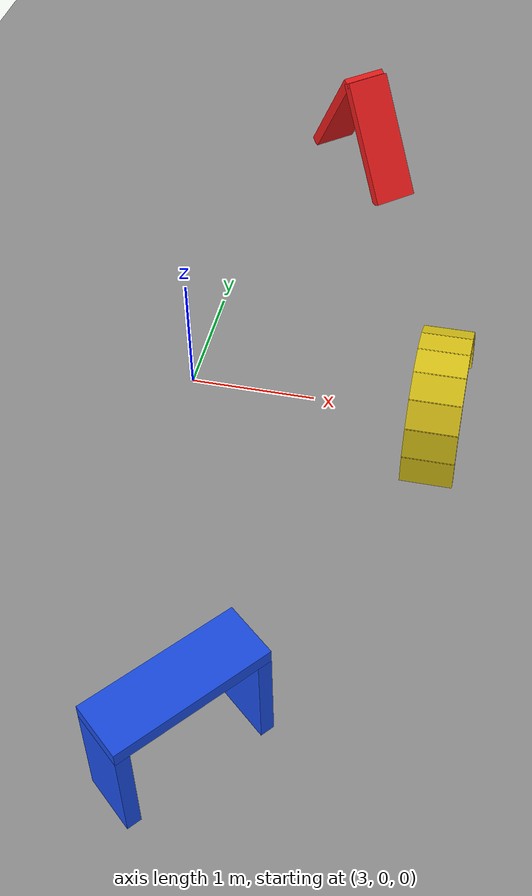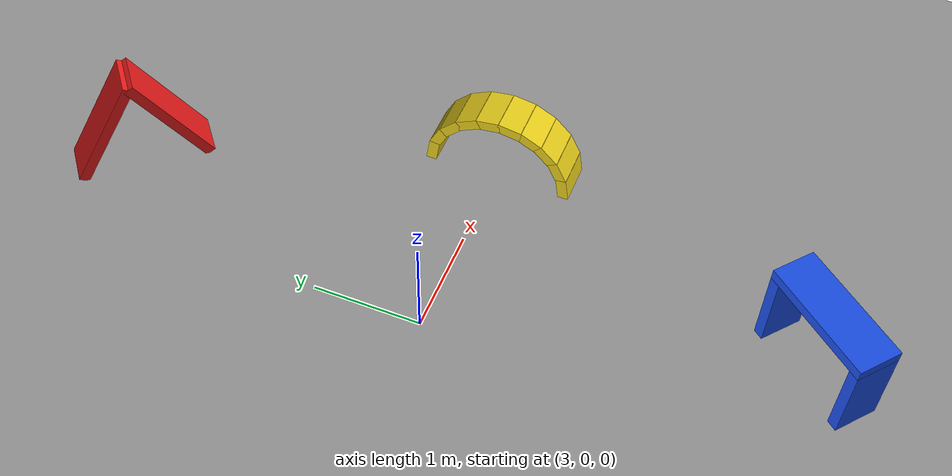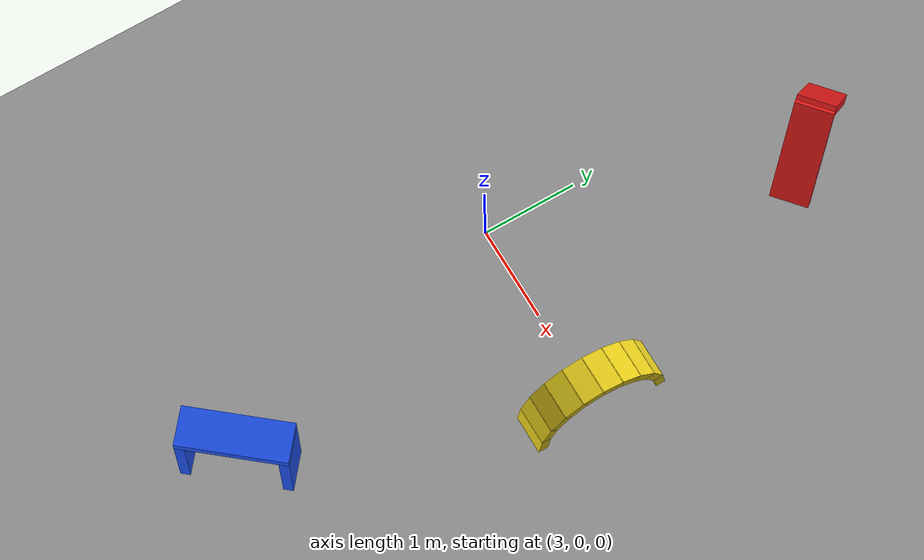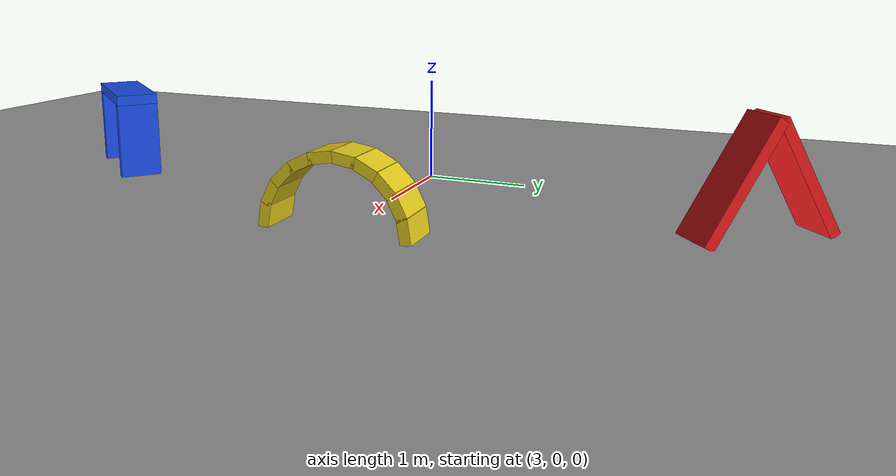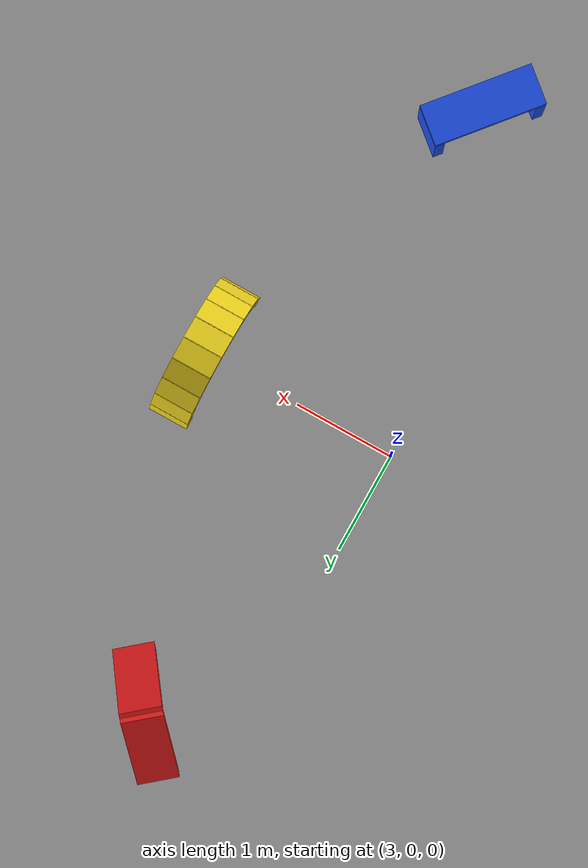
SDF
<?xml version="1.0"?>
<sdf version="1.6">
  <world name="tunnel_arc">

    <!-- ==================== Physics ==================== -->
    <physics type="ode">
      <real_time_update_rate>1000.0</real_time_update_rate>
      <max_step_size>0.001</max_step_size>
      <real_time_factor>1</real_time_factor>
    </physics>

    <!-- ==================== Scene ==================== -->
    <scene>
      <ambient>0.6 0.6 0.6 1</ambient>
      <background>0.4 0.5 0.6 1</background>
      <shadows>false</shadows>
    </scene>

    <!-- ==================== Lighting ==================== -->
    <light name="sun" type="directional">
      <cast_shadows>true</cast_shadows>
      <pose>0 0 10 0 0 0</pose>
      <diffuse>0.9 0.9 0.9 1</diffuse>
      <specular>0.3 0.3 0.3 1</specular>
      <direction>-0.3 0.3 -1</direction>
    </light>

    <!-- ==================== Gazebo ROS State Plugin ==================== -->
    <plugin name="gazebo_ros_state" filename="libgazebo_ros_state.so">
      <ros>
        <namespace>/</namespace>
      </ros>
    </plugin>

    <!-- ==================== Ground Plane ==================== -->
    <model name="ground_plane">
      <static>true</static>
      <link name="link">
        <collision name="collision">
          <geometry>
            <plane><normal>0 0 1</normal><size>100 100</size></plane>
          </geometry>
          <surface>
            <friction><ode><mu>100</mu><mu2>50</mu2></ode></friction>
          </surface>
        </collision>
        <visual name="visual">
          <cast_shadows>false</cast_shadows>
          <geometry>
            <plane><normal>0 0 1</normal><size>20 20</size></plane>
          </geometry>
          <material>
            <ambient>0.58 0.58 0.58 1</ambient>
            <diffuse>0.58 0.58 0.58 1</diffuse>
            <specular>0 0 0 1</specular>
          </material>
        </visual>
      </link>
    </model>

    <!-- ===== 三角形(Triangle) 隧道  θ=+40° ===== -->
    <model name="tunnel_triangle">
      <static>true</static>
      <!--
        ARC_RADIUS=5.0 m, θ=+40°
        位置 x=3.83  y=3.21  yaw=-2.4440 rad
        （+X 面朝向机器人，机器人沿本地 -X 方向穿越）
      -->
      <pose>3.83 3.21 0 0 0 -2.4440</pose>
      <link name="left_panel">
        <pose>0.0000 -0.3000 0.5000 1.0304 0.0000 0.0000</pose>
        <collision name="col">
          <geometry><box><size>0.4000 1.1662 0.1000</size></box></geometry>
        </collision>
        <visual name="vis">
          <geometry><box><size>0.4000 1.1662 0.1000</size></box></geometry>
          <material>
            <ambient>0.9 0.1 0.1 1</ambient>
            <diffuse>0.9 0.1 0.1 1</diffuse>
            <specular>0.4 0.4 0.4 30</specular>
          </material>
        </visual>
      </link>
      <link name="right_panel">
        <pose>0.0000 0.3000 0.5000 2.1112 0.0000 0.0000</pose>
        <collision name="col">
          <geometry><box><size>0.4000 1.1662 0.1000</size></box></geometry>
        </collision>
        <visual name="vis">
          <geometry><box><size>0.4000 1.1662 0.1000</size></box></geometry>
          <material>
            <ambient>0.9 0.1 0.1 1</ambient>
            <diffuse>0.9 0.1 0.1 1</diffuse>
            <specular>0.4 0.4 0.4 30</specular>
          </material>
        </visual>
      </link>
    </model>

    <!-- ===== 半圆形(Semicircle) 隧道  θ=  0° ===== -->
    <model name="tunnel_semicircle">
      <static>true</static>
      <!--
        ARC_RADIUS=5.0 m, θ=  0°
        位置 x=5.00  y=0.00  yaw=-3.1416 rad
        （+X 面朝向机器人，机器人沿本地 -X 方向穿越）
      -->
      <pose>5.00 0.00 0 0 0 -3.1416</pose>
      <link name="arc_00">
        <pose>0.0000 0.6420 0.1017 1.7279 0.0000 0.0000</pose>
        <collision name="col">
          <geometry><box><size>0.4000 0.2278 0.1000</size></box></geometry>
        </collision>
        <visual name="vis">
          <geometry><box><size>0.4000 0.2278 0.1000</size></box></geometry>
          <material>
            <ambient>0.9 0.8 0.1 1</ambient>
            <diffuse>0.9 0.8 0.1 1</diffuse>
            <specular>0.4 0.4 0.4 30</specular>
          </material>
        </visual>
      </link>
      <link name="arc_01">
        <pose>0.0000 0.5792 0.2951 2.0420 0.0000 0.0000</pose>
        <collision name="col">
          <geometry><box><size>0.4000 0.2278 0.1000</size></box></geometry>
        </collision>
        <visual name="vis">
          <geometry><box><size>0.4000 0.2278 0.1000</size></box></geometry>
          <material>
            <ambient>0.9 0.8 0.1 1</ambient>
            <diffuse>0.9 0.8 0.1 1</diffuse>
            <specular>0.4 0.4 0.4 30</specular>
          </material>
        </visual>
      </link>
      <link name="arc_02">
        <pose>0.0000 0.4596 0.4596 2.3562 0.0000 0.0000</pose>
        <collision name="col">
          <geometry><box><size>0.4000 0.2278 0.1000</size></box></geometry>
        </collision>
        <visual name="vis">
          <geometry><box><size>0.4000 0.2278 0.1000</size></box></geometry>
          <material>
            <ambient>0.9 0.8 0.1 1</ambient>
            <diffuse>0.9 0.8 0.1 1</diffuse>
            <specular>0.4 0.4 0.4 30</specular>
          </material>
        </visual>
      </link>
      <link name="arc_03">
        <pose>0.0000 0.2951 0.5792 2.6704 0.0000 0.0000</pose>
        <collision name="col">
          <geometry><box><size>0.4000 0.2278 0.1000</size></box></geometry>
        </collision>
        <visual name="vis">
          <geometry><box><size>0.4000 0.2278 0.1000</size></box></geometry>
          <material>
            <ambient>0.9 0.8 0.1 1</ambient>
            <diffuse>0.9 0.8 0.1 1</diffuse>
            <specular>0.4 0.4 0.4 30</specular>
          </material>
        </visual>
      </link>
      <link name="arc_04">
        <pose>0.0000 0.1017 0.6420 2.9845 0.0000 0.0000</pose>
        <collision name="col">
          <geometry><box><size>0.4000 0.2278 0.1000</size></box></geometry>
        </collision>
        <visual name="vis">
          <geometry><box><size>0.4000 0.2278 0.1000</size></box></geometry>
          <material>
            <ambient>0.9 0.8 0.1 1</ambient>
            <diffuse>0.9 0.8 0.1 1</diffuse>
            <specular>0.4 0.4 0.4 30</specular>
          </material>
        </visual>
      </link>
      <link name="arc_05">
        <pose>0.0000 -0.1017 0.6420 -2.9845 0.0000 0.0000</pose>
        <collision name="col">
          <geometry><box><size>0.4000 0.2278 0.1000</size></box></geometry>
        </collision>
        <visual name="vis">
          <geometry><box><size>0.4000 0.2278 0.1000</size></box></geometry>
          <material>
            <ambient>0.9 0.8 0.1 1</ambient>
            <diffuse>0.9 0.8 0.1 1</diffuse>
            <specular>0.4 0.4 0.4 30</specular>
          </material>
        </visual>
      </link>
      <link name="arc_06">
        <pose>0.0000 -0.2951 0.5792 -2.6704 0.0000 0.0000</pose>
        <collision name="col">
          <geometry><box><size>0.4000 0.2278 0.1000</size></box></geometry>
        </collision>
        <visual name="vis">
          <geometry><box><size>0.4000 0.2278 0.1000</size></box></geometry>
          <material>
            <ambient>0.9 0.8 0.1 1</ambient>
            <diffuse>0.9 0.8 0.1 1</diffuse>
            <specular>0.4 0.4 0.4 30</specular>
          </material>
        </visual>
      </link>
      <link name="arc_07">
        <pose>0.0000 -0.4596 0.4596 -2.3562 0.0000 0.0000</pose>
        <collision name="col">
          <geometry><box><size>0.4000 0.2278 0.1000</size></box></geometry>
        </collision>
        <visual name="vis">
          <geometry><box><size>0.4000 0.2278 0.1000</size></box></geometry>
          <material>
            <ambient>0.9 0.8 0.1 1</ambient>
            <diffuse>0.9 0.8 0.1 1</diffuse>
            <specular>0.4 0.4 0.4 30</specular>
          </material>
        </visual>
      </link>
      <link name="arc_08">
        <pose>0.0000 -0.5792 0.2951 -2.0420 0.0000 0.0000</pose>
        <collision name="col">
          <geometry><box><size>0.4000 0.2278 0.1000</size></box></geometry>
        </collision>
        <visual name="vis">
          <geometry><box><size>0.4000 0.2278 0.1000</size></box></geometry>
          <material>
            <ambient>0.9 0.8 0.1 1</ambient>
            <diffuse>0.9 0.8 0.1 1</diffuse>
            <specular>0.4 0.4 0.4 30</specular>
          </material>
        </visual>
      </link>
      <link name="arc_09">
        <pose>0.0000 -0.6420 0.1017 -1.7279 0.0000 0.0000</pose>
        <collision name="col">
          <geometry><box><size>0.4000 0.2278 0.1000</size></box></geometry>
        </collision>
        <visual name="vis">
          <geometry><box><size>0.4000 0.2278 0.1000</size></box></geometry>
          <material>
            <ambient>0.9 0.8 0.1 1</ambient>
            <diffuse>0.9 0.8 0.1 1</diffuse>
            <specular>0.4 0.4 0.4 30</specular>
          </material>
        </visual>
      </link>
    </model>

    <!-- ===== 正方形(Square) 隧道  θ=-40° ===== -->
    <model name="tunnel_square">
      <static>true</static>
      <!--
        ARC_RADIUS=5.0 m, θ=-40°
        位置 x=3.83  y=-3.21  yaw=2.4440 rad
        （+X 面朝向机器人，机器人沿本地 -X 方向穿越）
      -->
      <pose>3.83 -3.21 0 0 0 2.4440</pose>
      <link name="left_wall">
        <pose>0.0000 -0.5000 0.3750 0.0000 0.0000 0.0000</pose>
        <collision name="col">
          <geometry><box><size>0.4000 0.1000 0.7500</size></box></geometry>
        </collision>
        <visual name="vis">
          <geometry><box><size>0.4000 0.1000 0.7500</size></box></geometry>
          <material>
            <ambient>0.1 0.3 0.9 1</ambient>
            <diffuse>0.1 0.3 0.9 1</diffuse>
            <specular>0.4 0.4 0.4 30</specular>
          </material>
        </visual>
      </link>
      <link name="right_wall">
        <pose>0.0000 0.5000 0.3750 0.0000 0.0000 0.0000</pose>
        <collision name="col">
          <geometry><box><size>0.4000 0.1000 0.7500</size></box></geometry>
        </collision>
        <visual name="vis">
          <geometry><box><size>0.4000 0.1000 0.7500</size></box></geometry>
          <material>
            <ambient>0.1 0.3 0.9 1</ambient>
            <diffuse>0.1 0.3 0.9 1</diffuse>
            <specular>0.4 0.4 0.4 30</specular>
          </material>
        </visual>
      </link>
      <link name="top_bar">
        <pose>0.0000 0.0000 0.8000 0.0000 0.0000 0.0000</pose>
        <collision name="col">
          <geometry><box><size>0.4000 1.1000 0.1000</size></box></geometry>
        </collision>
        <visual name="vis">
          <geometry><box><size>0.4000 1.1000 0.1000</size></box></geometry>
          <material>
            <ambient>0.1 0.3 0.9 1</ambient>
            <diffuse>0.1 0.3 0.9 1</diffuse>
            <specular>0.4 0.4 0.4 30</specular>
          </material>
        </visual>
      </link>
    </model>

  </world>
</sdf>
